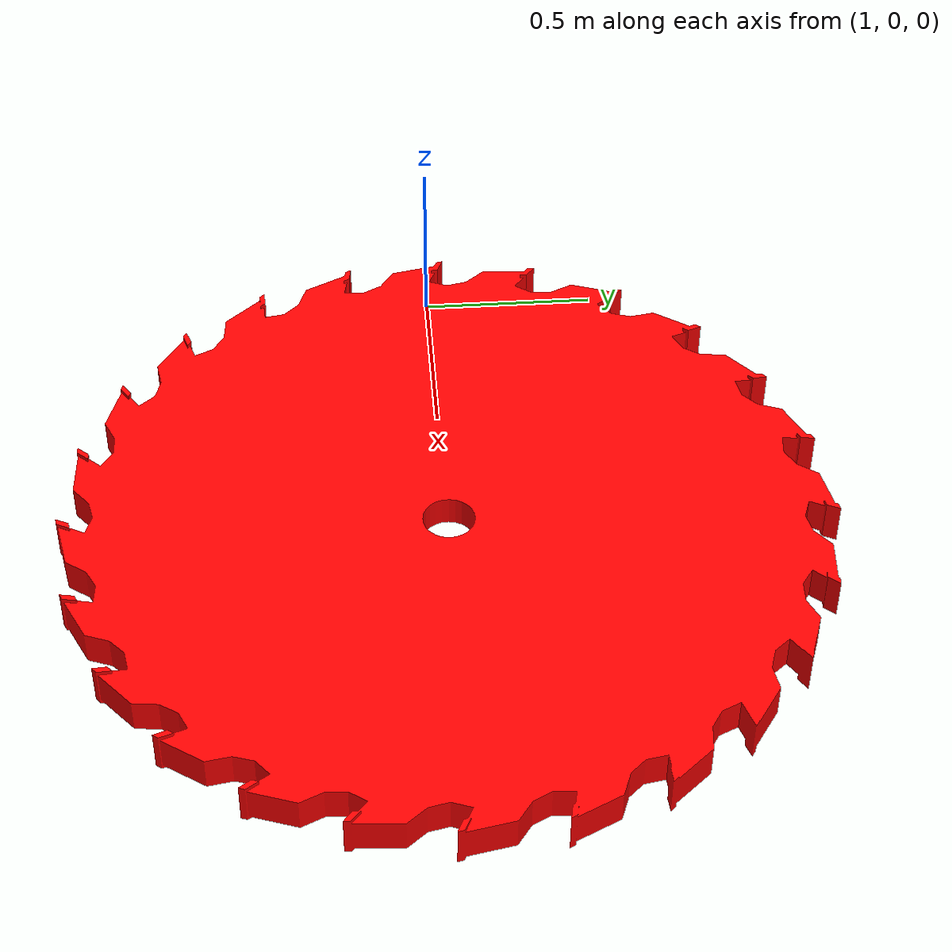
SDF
<?xml version="1.0"?>
<sdf version="1.6">
  <model name="saw_blade_2">
    <static>true</static> <!-- 완전 고정 -->

    <!-- 공중에 살짝 띄움 -->
    <pose>2 0 0.05 0 0 0</pose> <!-- z=0.05만큼 띄움 -->

    <link name="blade_link">
      <pose>0 0 0 0 0 0</pose>

      <visual name="blade_visual">
        <pose>0 0 0 0 0 0</pose>
        <geometry>
          <mesh>
            <uri>model://saw_blade_2/meshes/Sawblade.dae</uri>
            <scale>4 4 2</scale>
          </mesh>
        </geometry>
        <material>
          <ambient>1 0 0 1</ambient>
        </material>
      </visual>

      <collision name="blade_collision">
        <pose>0 0 0 0 0 0</pose>
        <geometry>
          <mesh>
            <uri>model://saw_blade_2/meshes/Sawblade.dae</uri>
            <scale>4 4 2</scale>
          </mesh>
        </geometry>
        <surface>
          <friction>
            <ode>
              <mu>1.0</mu>
              <mu2>1.0</mu2>
            </ode>
          </friction>
          <contact>
            <ode>
              <kp>100000.0</kp> <kd>1.0</kd>
              <max_vel>0.1</max_vel>
              <min_depth>0.003</min_depth>
            </ode>
          </contact>
        </surface>
      </collision>

       <!-- Contact sensor 추가 -->
      <sensor name="contact_sensor" type="contact">
        <always_on>true</always_on>
        <update_rate>3</update_rate>
        <contact>
          <collision>blade_collision</collision>
        </contact>
        <plugin name="contact_plugin" filename="libgazebo_ros_bumper.so">
          <ros>
            <namespace>/saw_blade_2</namespace>
            <remapping>bumper_states:=contact</remapping>
          </ros>
          <frame_name>blade_link</frame_name>
        </plugin>
      </sensor>

    </link>
  </model>
</sdf>
